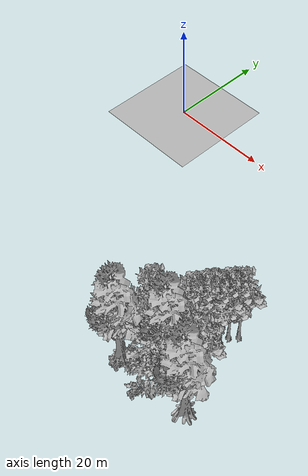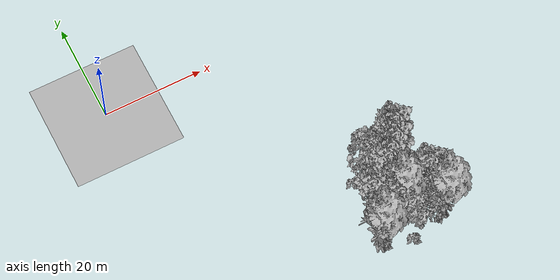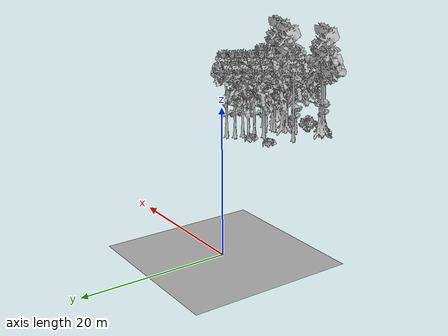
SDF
<sdf version="1.7">
 <world name="default">
  <model name="ground_plane">
   <static>1</static>
   <link name="link">
    <collision name="collision">
     <geometry><plane><normal>0 0 1</normal><size>100 100</size></plane></geometry>
     <surface><contact><ode><min_depth>0.01</min_depth><max_vel>0</max_vel></ode></contact></surface>
    </collision>
    <visual name="grass">
     <cast_shadows>0</cast_shadows>
     <geometry>
      <mesh>
       <scale>0.41000000000000003 0.41000000000000003 0.1</scale>
       <uri>file://grass_plane/meshes/grass_plane.dae</uri>
      </mesh>
     </geometry>
    </visual>
   </link>
  </model>
  <model name="Tree 14">
   <static>1</static>
   <pose>34.0772824988684 -46.59886837229775 0 1.57079 -0 0</pose>
   <link name="link">
    <collision name="collision">
     <geometry><mesh><scale>5 5 5</scale><uri>model://tree_4/meshes/tree_4.obj</uri></mesh></geometry>
    </collision>
    <visual name="visual">
     <geometry><mesh><scale>5 5 5</scale><uri>model://tree_4/meshes/tree_4.obj</uri></mesh></geometry>
    </visual>
   </link>
  </model>
  <model name="Tree 27">
   <static>1</static>
   <pose>39.68313411229319 -32.615920540559245 0 1.57079 -0 0</pose>
   <link name="link">
    <collision name="collision">
     <geometry><mesh><scale>5 5 5</scale><uri>model://tree_2/meshes/tree_2.obj</uri></mesh></geometry>
    </collision>
    <visual name="visual">
     <geometry><mesh><scale>5 5 5</scale><uri>model://tree_2/meshes/tree_2.obj</uri></mesh></geometry>
    </visual>
   </link>
  </model>
  <model name="Tree 46">
   <static>1</static>
   <pose>33.84190530448261 -46.29045705237117 0 1.57079 -0 0</pose>
   <link name="link">
    <collision name="collision">
     <geometry><mesh><scale>5 5 5</scale><uri>model://tree_9/meshes/tree_9.obj</uri></mesh></geometry>
    </collision>
    <visual name="visual">
     <geometry><mesh><scale>5 5 5</scale><uri>model://tree_9/meshes/tree_9.obj</uri></mesh></geometry>
    </visual>
   </link>
  </model>
  <model name="Tree 173">
   <static>1</static>
   <pose>40.43037485357864 -42.23641874081335 0 1.57079 -0 0</pose>
   <link name="link">
    <collision name="collision">
     <geometry><mesh><scale>5 5 5</scale><uri>model://tree_4/meshes/tree_4.obj</uri></mesh></geometry>
    </collision>
    <visual name="visual">
     <geometry><mesh><scale>5 5 5</scale><uri>model://tree_4/meshes/tree_4.obj</uri></mesh></geometry>
    </visual>
   </link>
  </model>
  <model name="Tree 196">
   <static>1</static>
   <pose>39.42073658402053 -41.210865440796695 0 1.57079 -0 0</pose>
   <link name="link">
    <collision name="collision">
     <geometry><mesh><scale>5 5 5</scale><uri>model://tree_2/meshes/tree_2.obj</uri></mesh></geometry>
    </collision>
    <visual name="visual">
     <geometry><mesh><scale>5 5 5</scale><uri>model://tree_2/meshes/tree_2.obj</uri></mesh></geometry>
    </visual>
   </link>
  </model>
  <model name="Tree 202">
   <static>1</static>
   <pose>43.45488937758476 -32.00739784229846 0 1.57079 -0 0</pose>
   <link name="link">
    <collision name="collision">
     <geometry><mesh><scale>5 5 5</scale><uri>model://tree_9/meshes/tree_9.obj</uri></mesh></geometry>
    </collision>
    <visual name="visual">
     <geometry><mesh><scale>5 5 5</scale><uri>model://tree_9/meshes/tree_9.obj</uri></mesh></geometry>
    </visual>
   </link>
  </model>
  <model name="Tree 231">
   <static>1</static>
   <pose>43.17408872309885 -33.69004788197067 0 1.57079 -0 0</pose>
   <link name="link">
    <collision name="collision">
     <geometry><mesh><scale>5 5 5</scale><uri>model://tree_9/meshes/tree_9.obj</uri></mesh></geometry>
    </collision>
    <visual name="visual">
     <geometry><mesh><scale>5 5 5</scale><uri>model://tree_9/meshes/tree_9.obj</uri></mesh></geometry>
    </visual>
   </link>
  </model>
  <model name="Tree 270">
   <static>1</static>
   <pose>46.21192026139306 -41.019183268055244 0 1.57079 -0 0</pose>
   <link name="link">
    <collision name="collision">
     <geometry><mesh><scale>5 5 5</scale><uri>model://tree_9/meshes/tree_9.obj</uri></mesh></geometry>
    </collision>
    <visual name="visual">
     <geometry><mesh><scale>5 5 5</scale><uri>model://tree_9/meshes/tree_9.obj</uri></mesh></geometry>
    </visual>
   </link>
  </model>
  <model name="Tree 276">
   <static>1</static>
   <pose>40.08651948772227 -36.59136219958855 0 1.57079 -0 0</pose>
   <link name="link">
    <collision name="collision">
     <geometry><mesh><scale>5 5 5</scale><uri>model://tree_9/meshes/tree_9.obj</uri></mesh></geometry>
    </collision>
    <visual name="visual">
     <geometry><mesh><scale>5 5 5</scale><uri>model://tree_9/meshes/tree_9.obj</uri></mesh></geometry>
    </visual>
   </link>
  </model>
  <model name="Tree 291">
   <static>1</static>
   <pose>41.03290571907176 -37.99853787617421 0 1.57079 -0 0</pose>
   <link name="link">
    <collision name="collision">
     <geometry><mesh><scale>5 5 5</scale><uri>model://tree_2/meshes/tree_2.obj</uri></mesh></geometry>
    </collision>
    <visual name="visual">
     <geometry><mesh><scale>5 5 5</scale><uri>model://tree_2/meshes/tree_2.obj</uri></mesh></geometry>
    </visual>
   </link>
  </model>
  <model name="Tree 304">
   <static>1</static>
   <pose>42.5211954715992 -45.7951712660425 0 1.57079 -0 0</pose>
   <link name="link">
    <collision name="collision">
     <geometry><mesh><scale>5 5 5</scale><uri>model://tree_2/meshes/tree_2.obj</uri></mesh></geometry>
    </collision>
    <visual name="visual">
     <geometry><mesh><scale>5 5 5</scale><uri>model://tree_2/meshes/tree_2.obj</uri></mesh></geometry>
    </visual>
   </link>
  </model>
  <model name="Tree 378">
   <static>1</static>
   <pose>42.35379942966942 -41.02405221375677 0 1.57079 -0 0</pose>
   <link name="link">
    <collision name="collision">
     <geometry><mesh><scale>5 5 5</scale><uri>model://tree_9/meshes/tree_9.obj</uri></mesh></geometry>
    </collision>
    <visual name="visual">
     <geometry><mesh><scale>5 5 5</scale><uri>model://tree_9/meshes/tree_9.obj</uri></mesh></geometry>
    </visual>
   </link>
  </model>
  <model name="Tree 393">
   <static>1</static>
   <pose>41.313568974517466 -35.20145907594361 0 1.57079 -0 0</pose>
   <link name="link">
    <collision name="collision">
     <geometry><mesh><scale>5 5 5</scale><uri>model://tree_9/meshes/tree_9.obj</uri></mesh></geometry>
    </collision>
    <visual name="visual">
     <geometry><mesh><scale>5 5 5</scale><uri>model://tree_9/meshes/tree_9.obj</uri></mesh></geometry>
    </visual>
   </link>
  </model>
  <model name="Tree 397">
   <static>1</static>
   <pose>47.77948027689769 -45.89022595186787 0 1.57079 -0 0</pose>
   <link name="link">
    <collision name="collision">
     <geometry><mesh><scale>5 5 5</scale><uri>model://tree_4/meshes/tree_4.obj</uri></mesh></geometry>
    </collision>
    <visual name="visual">
     <geometry><mesh><scale>5 5 5</scale><uri>model://tree_4/meshes/tree_4.obj</uri></mesh></geometry>
    </visual>
   </link>
  </model>
  <model name="Tree 429">
   <static>1</static>
   <pose>34.97137101375034 -39.991488455039914 0 1.57079 -0 0</pose>
   <link name="link">
    <collision name="collision">
     <geometry><mesh><scale>5 5 5</scale><uri>model://tree_9/meshes/tree_9.obj</uri></mesh></geometry>
    </collision>
    <visual name="visual">
     <geometry><mesh><scale>5 5 5</scale><uri>model://tree_9/meshes/tree_9.obj</uri></mesh></geometry>
    </visual>
   </link>
  </model>
  <model name="Tree 436">
   <static>1</static>
   <pose>38.759925952332935 -43.61144548312803 0 1.57079 -0 0</pose>
   <link name="link">
    <collision name="collision">
     <geometry><mesh><scale>5 5 5</scale><uri>model://tree_9/meshes/tree_9.obj</uri></mesh></geometry>
    </collision>
    <visual name="visual">
     <geometry><mesh><scale>5 5 5</scale><uri>model://tree_9/meshes/tree_9.obj</uri></mesh></geometry>
    </visual>
   </link>
  </model>
  <model name="Tree 447">
   <static>1</static>
   <pose>43.27197609381956 -41.1261130366957 0 1.57079 -0 0</pose>
   <link name="link">
    <collision name="collision">
     <geometry><mesh><scale>5 5 5</scale><uri>model://tree_9/meshes/tree_9.obj</uri></mesh></geometry>
    </collision>
    <visual name="visual">
     <geometry><mesh><scale>5 5 5</scale><uri>model://tree_9/meshes/tree_9.obj</uri></mesh></geometry>
    </visual>
   </link>
  </model>
  <model name="Tree 494">
   <static>1</static>
   <pose>44.57707523352191 -30.79650631551385 0 1.57079 -0 0</pose>
   <link name="link">
    <collision name="collision">
     <geometry><mesh><scale>5 5 5</scale><uri>model://tree_9/meshes/tree_9.obj</uri></mesh></geometry>
    </collision>
    <visual name="visual">
     <geometry><mesh><scale>5 5 5</scale><uri>model://tree_9/meshes/tree_9.obj</uri></mesh></geometry>
    </visual>
   </link>
  </model>
  <model name="Bush 4">
   <static>1</static>
   <pose>35.00925909270374 -34.30063965522383 0 1.57079 -0 0</pose>
   <link name="link">
    <collision name="collision">
     <geometry><mesh><scale>2 2 2</scale><uri>model://bush_2/meshes/bush_2.obj</uri></mesh></geometry>
    </collision>
    <visual name="visual">
     <geometry><mesh><scale>5 5 5</scale><uri>model://bush_2/meshes/bush_2.obj</uri></mesh></geometry>
    </visual>
   </link>
  </model>
  <model name="Bush 35">
   <static>1</static>
   <pose>39.7297926726836 -49.18972370551895 0 1.57079 -0 0</pose>
   <link name="link">
    <collision name="collision">
     <geometry><mesh><scale>2 2 2</scale><uri>model://bush_2/meshes/bush_2.obj</uri></mesh></geometry>
    </collision>
    <visual name="visual">
     <geometry><mesh><scale>5 5 5</scale><uri>model://bush_2/meshes/bush_2.obj</uri></mesh></geometry>
    </visual>
   </link>
  </model>
  <model name="Bush 56">
   <static>1</static>
   <pose>36.93324152143998 -45.313424054208426 0 1.57079 -0 0</pose>
   <link name="link">
    <collision name="collision">
     <geometry><mesh><scale>2 2 2</scale><uri>model://bush_4/meshes/bush_4.obj</uri></mesh></geometry>
    </collision>
    <visual name="visual">
     <geometry><mesh><scale>5 5 5</scale><uri>model://bush_4/meshes/bush_4.obj</uri></mesh></geometry>
    </visual>
   </link>
  </model>
  <model name="Bush 69">
   <static>1</static>
   <pose>39.444303434204286 -33.261371518582074 0 1.57079 -0 0</pose>
   <link name="link">
    <collision name="collision">
     <geometry><mesh><scale>2 2 2</scale><uri>model://bush_2/meshes/bush_2.obj</uri></mesh></geometry>
    </collision>
    <visual name="visual">
     <geometry><mesh><scale>5 5 5</scale><uri>model://bush_2/meshes/bush_2.obj</uri></mesh></geometry>
    </visual>
   </link>
  </model>
  <model name="Bush 94">
   <static>1</static>
   <pose>34.374456433676116 -47.78424732187621 0 1.57079 -0 0</pose>
   <link name="link">
    <collision name="collision">
     <geometry><mesh><scale>2 2 2</scale><uri>model://bush_2/meshes/bush_2.obj</uri></mesh></geometry>
    </collision>
    <visual name="visual">
     <geometry><mesh><scale>5 5 5</scale><uri>model://bush_2/meshes/bush_2.obj</uri></mesh></geometry>
    </visual>
   </link>
  </model>
 </world>
</sdf>
